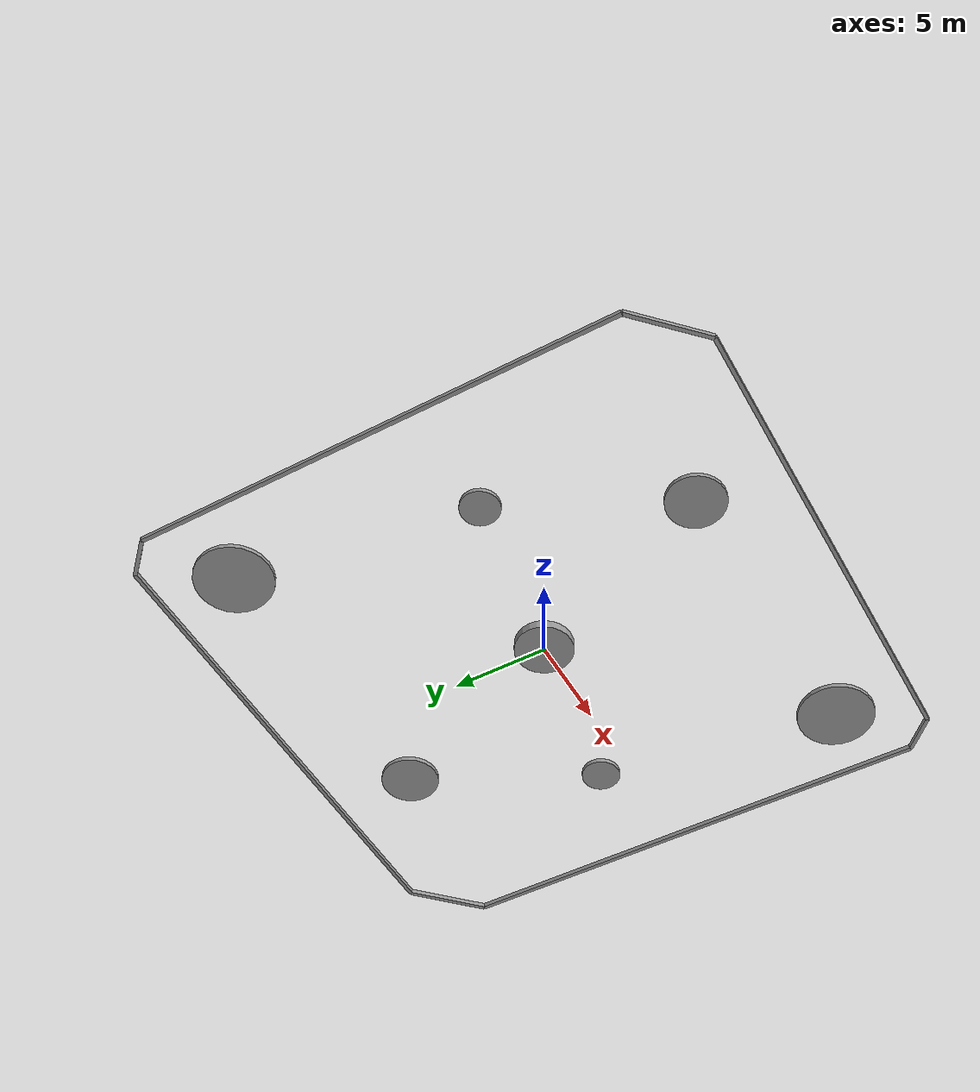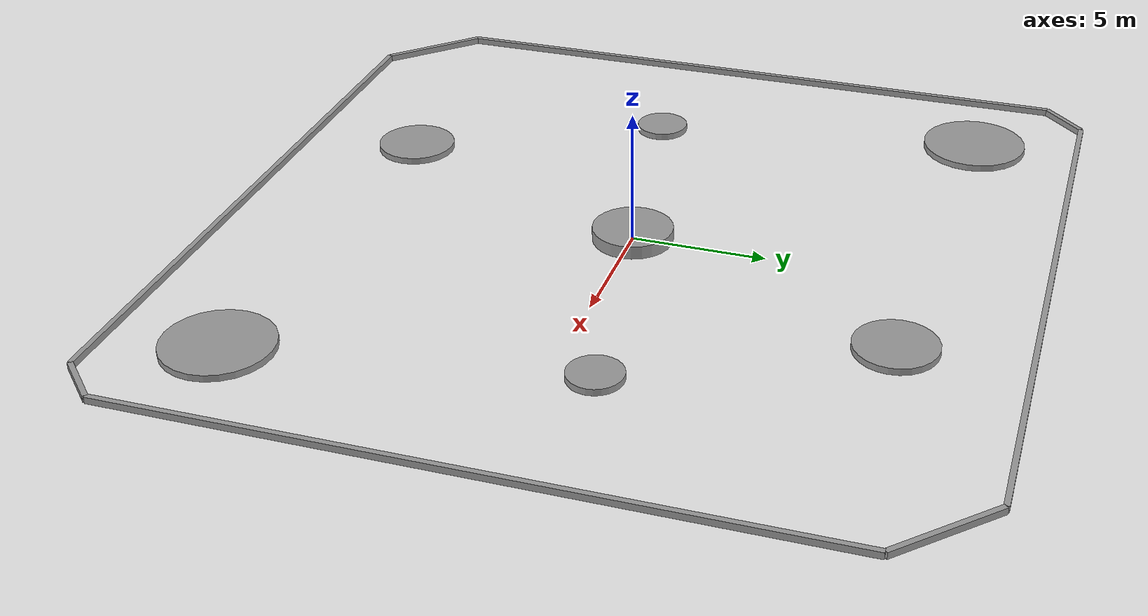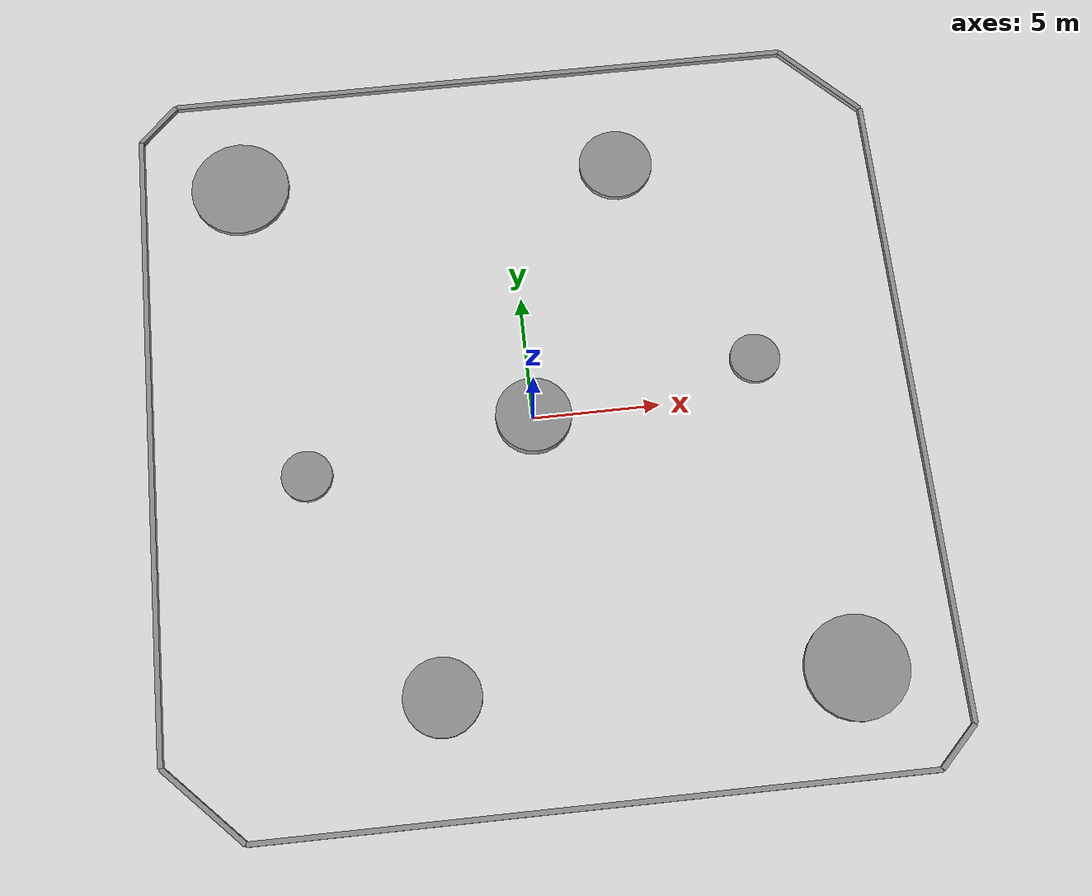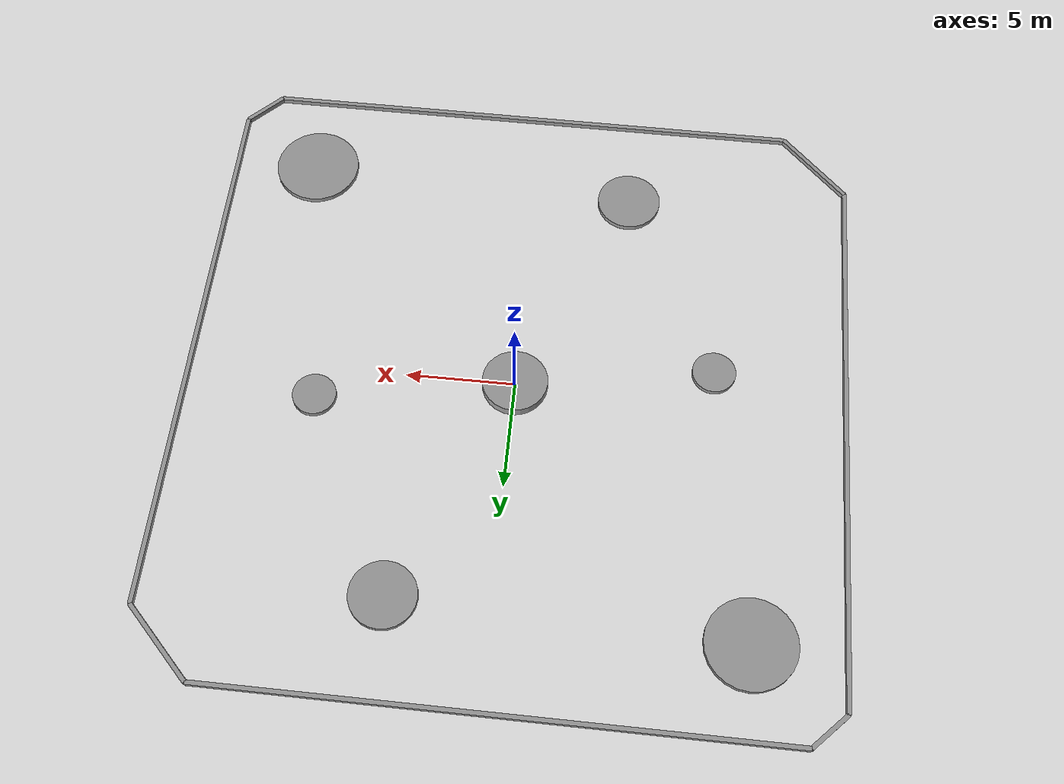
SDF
<?xml version='1.0'?>
<sdf version='1.4'>
  <model name='Wall'>
    <link name='Wall_1'>
      <collision name='Wall_1_Collision'>
        <geometry>
          <box>
            <size>25.5 0.2 0.25</size>
          </box>
        </geometry>
        <pose>0 0 0.125 0 -0 0</pose>
      </collision>
      <visual name='Wall_1_Visual'>
        <pose>0 0 0.125 0 -0 0</pose>
        <geometry>
          <box>
            <size>25.5 0.2 0.25</size>
          </box>
        </geometry>
        <material>
          <script>
            <uri>file://media/materials/scripts/gazebo.material</uri>
            <name>Gazebo/Grey</name>
          </script>
        </material>
      </visual>
      <velocity_decay>
        <linear>0</linear>
        <angular>0</angular>
      </velocity_decay>
      <pose>-15 0.75 0 0 0 -1.5708</pose>
    </link>

    <link name='Wall_2'>
      <collision name='Wall_2_Collision'>
        <geometry>
          <box>
            <size>25.5 0.2 0.25</size>
          </box>
        </geometry>
        <pose>0 0 0.125 0 -0 0</pose>
      </collision>
      <visual name='Wall_2_Visual'>
        <pose>0 0 0.125 0 -0 0</pose>
        <geometry>
          <box>
            <size>25.5 0.2 0.25</size>
          </box>
         </geometry>
        <material>
          <script>
            <uri>file://media/materials/scripts/gazebo.material</uri>
            <name>Gazebo/Grey</name>
          </script>
        </material>
      </visual>
      <velocity_decay>
        <linear>0</linear>
        <angular>0</angular>
      </velocity_decay>
      <pose>0.75 -15 0 0 0 0</pose>
    </link>

 <link name='Wall_3'>
      <collision name='Wall_3_Collision'>
        <geometry>
          <box>
            <size>25.5 0.2 0.25</size>
          </box>
        </geometry>
        <pose>0 0 0.125 0 -0 0</pose>
      </collision>
      <visual name='Wall_3_Visual'>
        <pose>0 0 0.125 0 -0 0</pose>
        <geometry>
          <box>
            <size>25.5 0.2 0.25</size>
          </box>
        </geometry>
        <material>
          <script>
            <uri>file://media/materials/scripts/gazebo.material</uri>
            <name>Gazebo/Grey</name>
          </script>
        </material>
      </visual>
      <velocity_decay>
        <linear>0</linear>
        <angular>0</angular>
      </velocity_decay>
      <pose>15 -0.75 0 0 0 -1.5708</pose>
    </link>

    <link name='Wall_4'>
      <collision name='Wall_4_Collision'>
        <geometry>
          <box>
            <size>25.5 0.2 0.25</size>
          </box>
        </geometry>
        <pose>0 0 0.125 0 -0 0</pose>
      </collision>
      <visual name='Wall_4_Visual'>
        <pose>0 0 0.125 0 -0 0</pose>
        <geometry>
          <box>
            <size>25.5 0.2 0.25</size>
          </box>
        </geometry>
        <material>
          <script>
            <uri>file://media/materials/scripts/gazebo.material</uri>
            <name>Gazebo/Grey</name>
          </script>
        </material>
      </visual>
      <velocity_decay>
        <linear>0</linear>
        <angular>0</angular>
      </velocity_decay>
      <pose>-0.75 15 0 0 0 0</pose>
    </link>

    <link name='Wall_5'>
      <collision name='Wall_5_Collision'>
        <geometry>
          <box>
            <size> 4.2426405 0.2 0.25</size>
          </box>
        </geometry>
        <pose>0 0 0.125 0 -0 0</pose>
      </collision>
      <visual name='Wall_5_Visual'>
        <pose>0 0 0.125 0 -0 0</pose>
        <geometry>
          <box>
            <size>4.2426405 0.2 0.25</size>
          </box>
        </geometry>
        <material>
          <script>
            <uri>file://media/materials/scripts/gazebo.material</uri>
            <name>Gazebo/Grey</name>
          </script>
        </material>
      </visual>
      <velocity_decay>
        <linear>0</linear>
        <angular>0</angular>
      </velocity_decay>
      <pose>13.5 13.5 0 0 0 -0.78539</pose>
    </link>

    <link name='Wall_6'>
      <collision name='Wall_6_Collision'>
        <geometry>
          <box>
            <size> 4.2426405 0.2 0.25</size>
          </box>
        </geometry>
        <pose>0 0 0.125 0 -0 0</pose>
      </collision>
      <visual name='Wall_6_Visual'>
        <pose>0 0 0.125 0 -0 0</pose>
        <geometry>
          <box>
            <size>4.2426405 0.2 0.25</size>
          </box>
        </geometry>
        <material>
          <script>
            <uri>file://media/materials/scripts/gazebo.material</uri>
            <name>Gazebo/Grey</name>
          </script>
        </material>
      </visual>
      <velocity_decay>
        <linear>0</linear>
        <angular>0</angular>
      </velocity_decay>
      <pose>-13.5 -13.5 0 0 0 -0.78539</pose>
    </link>

    <link name='Wall_7'>
      <collision name='Wall_7_Collision'>
        <geometry>
          <box>
            <size> 2.1213225 0.2 0.25</size>
          </box>
        </geometry>
        <pose>0 0 0.125 0 -0 0</pose>
      </collision>
      <visual name='Wall_7_Visual'>
        <pose>0 0 0.125 0 -0 0</pose>
        <geometry>
          <box>
            <size> 2.1213225 0.2 0.25</size>
          </box>
        </geometry>
        <material>
          <script>
            <uri>file://media/materials/scripts/gazebo.material</uri>
            <name>Gazebo/Grey</name>
          </script>
        </material>
      </visual>
      <velocity_decay>
        <linear>0</linear>
        <angular>0</angular>
      </velocity_decay>
      <pose>-14.25 14.25 0 0 0 0.78539</pose>
    </link>

    <link name='Wall_8'>
      <collision name='Wall_8_Collision'>
        <geometry>
          <box>
            <size>  2.1213225 0.2 0.25</size>
          </box>
        </geometry>
        <pose>0 0 0.125 0 -0 0</pose>
      </collision>
      <visual name='Wall_7_Visual'>
        <pose>0 0 0.125 0 -0 0</pose>
        <geometry>
          <box>
            <size> 2.1213225 0.2 0.25</size>
          </box>
        </geometry>
        <material>
          <script>
            <uri>file://media/materials/scripts/gazebo.material</uri>
            <name>Gazebo/Grey</name>
          </script>
        </material>
      </visual>
      <velocity_decay>
        <linear>0</linear>
        <angular>0</angular>
      </velocity_decay>
      <pose> 14.25 -14.25 0 0 0 0.78539</pose>
    </link>

    <link name='Obstacle_0'>
      <collision name='Obstacle_0_Collision'>
        <geometry>
          <cylinder>
            <radius> 1.5 </radius>
	    <length> .5 </length>
          </cylinder>
        </geometry>
        <pose>0 0 0.25 0 -0 0</pose>
      </collision>
      <visual name='Obstacle_0_Visual'>
        <pose>0 0 0.25 0 -0 0</pose>
        <geometry>
         <cylinder>
            <radius> 1.5 </radius>
	    <length> .5 </length>
          </cylinder>
	</geometry>
        <material>
          <script>
            <uri>file://media/materials/scripts/gazebo.material</uri>
            <name>Gazebo/Grey</name>
          </script>
        </material>
      </visual>
      <velocity_decay>
        <linear>0</linear>
        <angular>0</angular>
      </velocity_decay>
      <pose>0 0 0 0 0 0</pose>
    </link>

 <link name='Obstacle_1'>
      <collision name='Obstacle_1_Collision'>
        <geometry>
          <cylinder>
            <radius> 2 </radius>
	    <length> 0.25 </length>
          </cylinder>
        </geometry>
        <pose>0 0 0.125 0 -0 0</pose>
      </collision>
      <visual name='Obstacle_1_Visual'>
        <pose>0 0 0.125 0 -0 0</pose>
        <geometry>
         <cylinder>
            <radius> 2 </radius>
	    <length> 0.25 </length>
          </cylinder>
	</geometry>
        <material>
          <script>
            <uri>file://media/materials/scripts/gazebo.material</uri>
            <name>Gazebo/Grey</name>
          </script>
        </material>
      </visual>
      <velocity_decay>
        <linear>0</linear>
        <angular>0</angular>
      </velocity_decay>
      <pose> 11 -11 0 0 0 0</pose>
    </link>
   <link name='Obstacle_2'>
      <collision name='Obstacle_2_Collision'>
        <geometry>
          <cylinder>
            <radius> 2 </radius>
	    <length> 0.25 </length>
          </cylinder>
        </geometry>
        <pose>0 0 0.125 0 -0 0</pose>
      </collision>
      <visual name='Obstacle_2_Visual'>
        <pose>0 0 0.125 0 -0 0</pose>
        <geometry>
         <cylinder>
            <radius> 2 </radius>
	    <length> 0.25 </length>
          </cylinder>
	</geometry>
        <material>
          <script>
            <uri>file://media/materials/scripts/gazebo.material</uri>
            <name>Gazebo/Grey</name>
          </script>
        </material>
      </visual>
      <velocity_decay>
        <linear>0</linear>
        <angular>0</angular>
      </velocity_decay>
      <pose> -11 11 0 0 0 0</pose>
    </link>

    <link name='Obstacle_3'>
      <collision name='Obstacle_3_Collision'>
        <geometry>
          <cylinder>
            <radius> 1.5 </radius>
	    <length> 0.25 </length>
          </cylinder>
        </geometry>
        <pose>0 0 0.125 0 -0 0</pose>
      </collision>
      <visual name='Obstacle_3_Visual'>
        <pose>0 0 0.125 0 -0 0</pose>
        <geometry>
         <cylinder>
            <radius> 1.5 </radius>
	    <length> 0.25 </length>
          </cylinder>
	</geometry>
        <material>
          <script>
            <uri>file://media/materials/scripts/gazebo.material</uri>
            <name>Gazebo/Grey</name>
          </script>
        </material>
      </visual>
      <velocity_decay>
        <linear>0</linear>
        <angular>0</angular>
      </velocity_decay>
      <pose> 4.5 10.5 0 0 0 0</pose>
    </link>

 <link name='Obstacle_4'>
      <collision name='Obstacle_4_Collision'>
        <geometry>
          <cylinder>
            <radius> 1.5 </radius>
	    <length> 0.25 </length>
          </cylinder>
        </geometry>
        <pose>0 0 0.125 0 -0 0</pose>
      </collision>
      <visual name='Obstacle_4_Visual'>
        <pose>0 0 0.125 0 -0 0</pose>
        <geometry>
         <cylinder>
            <radius> 1.5 </radius>
	    <length> 0.25 </length>
          </cylinder>
	</geometry>
        <material>
          <script>
            <uri>file://media/materials/scripts/gazebo.material</uri>
            <name>Gazebo/Grey</name>
          </script>
        </material>
      </visual>
      <velocity_decay>
        <linear>0</linear>
        <angular>0</angular>
      </velocity_decay>
      <pose> -4.5 -10.5 0 0 0 0</pose>
    </link>

    <link name='Obstacle_5'>
      <collision name='Obstacle_5_Collision'>
        <geometry>
          <cylinder>
            <radius> 1 </radius>
	    <length> 0.25 </length>
          </cylinder>
        </geometry>
        <pose>0 0 0.125 0 -0 0</pose>
      </collision>
      <visual name='Obstacle_5_Visual'>
        <pose>0 0 0.125 0 -0 0</pose>
        <geometry>
         <cylinder>
            <radius> 1 </radius>
	    <length> 0.25 </length>
          </cylinder>
	</geometry>
        <material>
          <script>
            <uri>file://media/materials/scripts/gazebo.material</uri>
            <name>Gazebo/Grey</name>
          </script>
        </material>
      </visual>
      <velocity_decay>
        <linear>0</linear>
        <angular>0</angular>
      </velocity_decay>
      <pose> 9 1.5 0 0 0 0</pose>
    </link>

 <link name='Obstacle_6'>
      <collision name='Obstacle_6_Collision'>
        <geometry>
          <cylinder>
            <radius> 1 </radius>
	    <length> 0.25 </length>
          </cylinder>
        </geometry>
        <pose>0 0 0.125 0 -0 0</pose>
      </collision>
      <visual name='Obstacle_6_Visual'>
        <pose>0 0 0.125 0 -0 0</pose>
        <geometry>
         <cylinder>
            <radius> 1 </radius>
	    <length> 0.25 </length>
          </cylinder>
	</geometry>
        <material>
          <script>
            <uri>file://media/materials/scripts/gazebo.material</uri>
            <name>Gazebo/Grey</name>
          </script>
        </material>
      </visual>
      <velocity_decay>
        <linear>0</linear>
        <angular>0</angular>
      </velocity_decay>
      <pose> -9 -1.5 0 0 0 0</pose>
    </link>

    <static>1</static>
  </model>
</sdf>
